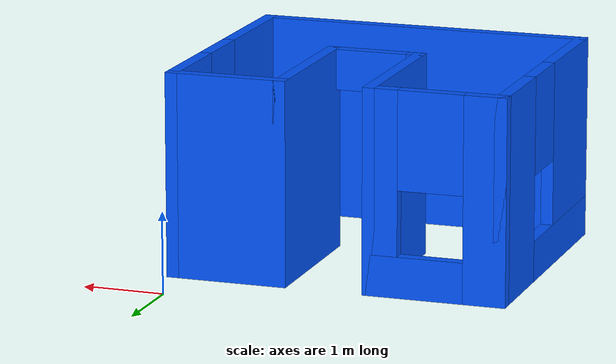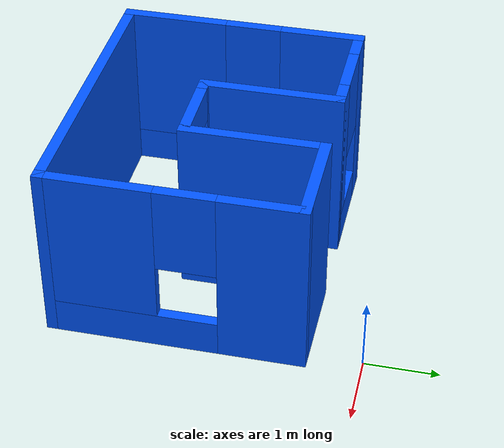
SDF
<?xml version='1.0'?>
<sdf version='1.6'>
  <model name='mybuilding'>
    <pose frame=''>-1.865 -2.465 0 0 -0 0</pose>
    <link name='Wall_0'>
      <pose frame=''>-1.225 1.675 0 0 -0 0</pose>
      <visual name='Wall_0_Visual_0'>
        <pose frame=''>-0.615175 0 1.25 0 -0 0</pose>
        <geometry>
          <box>
            <size>0.51965 0.15 2.5</size>
          </box>
        </geometry>
        <material>
          <script>
            <uri>file://media/materials/scripts/gazebo.material</uri>
            <name>Gazebo/Grey</name>
          </script>
          <ambient>0 0.333333 1 1</ambient>
        </material>
        <meta>
          <layer>0</layer>
        </meta>
      </visual>
      <collision name='Wall_0_Collision_0'>
        <geometry>
          <box>
            <size>0.51965 0.15 2.5</size>
          </box>
        </geometry>
        <pose frame=''>-0.615175 0 1.25 0 -0 0</pose>
      </collision>
      <visual name='Wall_0_Visual_1'>
        <pose frame=''>0.259825 0 0.25 0 -0 0</pose>
        <geometry>
          <box>
            <size>1.23035 0.15 0.5</size>
          </box>
        </geometry>
        <material>
          <script>
            <uri>file://media/materials/scripts/gazebo.material</uri>
            <name>Gazebo/Grey</name>
          </script>
          <ambient>0 0.333333 1 1</ambient>
        </material>
        <meta>
          <layer>0</layer>
        </meta>
      </visual>
      <collision name='Wall_0_Collision_1'>
        <geometry>
          <box>
            <size>1.23035 0.15 0.5</size>
          </box>
        </geometry>
        <pose frame=''>0.259825 0 0.25 0 -0 0</pose>
      </collision>
      <visual name='Wall_0_Visual_2'>
        <pose frame=''>0.659825 0 1.5 0 -0 0</pose>
        <geometry>
          <box>
            <size>0.43035 0.15 2</size>
          </box>
        </geometry>
        <material>
          <script>
            <uri>file://media/materials/scripts/gazebo.material</uri>
            <name>Gazebo/Grey</name>
          </script>
          <ambient>0 0.333333 1 1</ambient>
        </material>
        <meta>
          <layer>0</layer>
        </meta>
      </visual>
      <collision name='Wall_0_Collision_2'>
        <geometry>
          <box>
            <size>0.43035 0.15 2</size>
          </box>
        </geometry>
        <pose frame=''>0.659825 0 1.5 0 -0 0</pose>
      </collision>
      <visual name='Wall_0_Visual_3'>
        <pose frame=''>0.04465 0 1.9 0 -0 0</pose>
        <geometry>
          <box>
            <size>0.8 0.15 1.2</size>
          </box>
        </geometry>
        <material>
          <script>
            <uri>file://media/materials/scripts/gazebo.material</uri>
            <name>Gazebo/Grey</name>
          </script>
          <ambient>0 0.333333 1 1</ambient>
        </material>
        <meta>
          <layer>0</layer>
        </meta>
      </visual>
      <collision name='Wall_0_Collision_3'>
        <geometry>
          <box>
            <size>0.8 0.15 1.2</size>
          </box>
        </geometry>
        <pose frame=''>0.04465 0 1.9 0 -0 0</pose>
      </collision>
    </link>
    <link name='Wall_1'>
      <collision name='Wall_1_Collision'>
        <geometry>
          <box>
            <size>2 0.15 2.5</size>
          </box>
        </geometry>
        <pose frame=''>0 0 1.25 0 -0 0</pose>
      </collision>
      <visual name='Wall_1_Visual'>
        <pose frame=''>0 0 1.25 0 -0 0</pose>
        <geometry>
          <box>
            <size>2 0.15 2.5</size>
          </box>
        </geometry>
        <material>
          <script>
            <uri>file://media/materials/scripts/gazebo.material</uri>
            <name>Gazebo/Grey</name>
          </script>
          <ambient>0 0.333333 1 1</ambient>
        </material>
        <meta>
          <layer>0</layer>
        </meta>
      </visual>
      <pose frame=''>-0.425 0.75 0 0 0 -1.5708</pose>
    </link>
    <link name='Wall_13'>
      <collision name='Wall_13_Collision'>
        <geometry>
          <box>
            <size>1.5 0.15 2.5</size>
          </box>
        </geometry>
        <pose frame=''>0 0 1.25 0 -0 0</pose>
      </collision>
      <visual name='Wall_13_Visual'>
        <pose frame=''>0 0 1.25 0 -0 0</pose>
        <geometry>
          <box>
            <size>1.5 0.15 2.5</size>
          </box>
        </geometry>
        <material>
          <script>
            <uri>file://media/materials/scripts/gazebo.material</uri>
            <name>Gazebo/Grey</name>
          </script>
          <ambient>0 0.333333 1 1</ambient>
        </material>
        <meta>
          <layer>0</layer>
        </meta>
      </visual>
      <pose frame=''>1.35 1.675 0 0 -0 0</pose>
    </link>
    <link name='Wall_17'>
      <pose frame=''>2.025 0 0 0 0 -1.5708</pose>
      <visual name='Wall_17_Visual_0'>
        <pose frame=''>-1.16758 0 1.25 0 -0 0</pose>
        <geometry>
          <box>
            <size>1.16485 0.15 2.5</size>
          </box>
        </geometry>
        <material>
          <script>
            <uri>file://media/materials/scripts/gazebo.material</uri>
            <name>Gazebo/Grey</name>
          </script>
          <ambient>0 0.333333 1 1</ambient>
        </material>
        <meta>
          <layer>0</layer>
        </meta>
      </visual>
      <collision name='Wall_17_Collision_0'>
        <geometry>
          <box>
            <size>1.16485 0.15 2.5</size>
          </box>
        </geometry>
        <pose frame=''>-1.16758 0 1.25 0 -0 0</pose>
      </collision>
      <visual name='Wall_17_Visual_1'>
        <pose frame=''>0.582425 0 0.25 0 -0 0</pose>
        <geometry>
          <box>
            <size>2.33515 0.15 0.5</size>
          </box>
        </geometry>
        <material>
          <script>
            <uri>file://media/materials/scripts/gazebo.material</uri>
            <name>Gazebo/Grey</name>
          </script>
          <ambient>0 0.333333 1 1</ambient>
        </material>
        <meta>
          <layer>0</layer>
        </meta>
      </visual>
      <collision name='Wall_17_Collision_1'>
        <geometry>
          <box>
            <size>2.33515 0.15 0.5</size>
          </box>
        </geometry>
        <pose frame=''>0.582425 0 0.25 0 -0 0</pose>
      </collision>
      <visual name='Wall_17_Visual_2'>
        <pose frame=''>0.982425 0 1.5 0 -0 0</pose>
        <geometry>
          <box>
            <size>1.53515 0.15 2</size>
          </box>
        </geometry>
        <material>
          <script>
            <uri>file://media/materials/scripts/gazebo.material</uri>
            <name>Gazebo/Grey</name>
          </script>
          <ambient>0 0.333333 1 1</ambient>
        </material>
        <meta>
          <layer>0</layer>
        </meta>
      </visual>
      <collision name='Wall_17_Collision_2'>
        <geometry>
          <box>
            <size>1.53515 0.15 2</size>
          </box>
        </geometry>
        <pose frame=''>0.982425 0 1.5 0 -0 0</pose>
      </collision>
      <visual name='Wall_17_Visual_3'>
        <pose frame=''>-0.18515 0 1.9 0 -0 0</pose>
        <geometry>
          <box>
            <size>0.8 0.15 1.2</size>
          </box>
        </geometry>
        <material>
          <script>
            <uri>file://media/materials/scripts/gazebo.material</uri>
            <name>Gazebo/Grey</name>
          </script>
          <ambient>0 0.333333 1 1</ambient>
        </material>
        <meta>
          <layer>0</layer>
        </meta>
      </visual>
      <collision name='Wall_17_Collision_3'>
        <geometry>
          <box>
            <size>0.8 0.15 1.2</size>
          </box>
        </geometry>
        <pose frame=''>-0.18515 0 1.9 0 -0 0</pose>
      </collision>
    </link>
    <link name='Wall_2'>
      <pose frame=''>0.125 -0.175 0 0 -0 0</pose>
      <visual name='Wall_2_Visual_0'>
        <pose frame=''>-0.5157 0 1.25 0 -0 0</pose>
        <geometry>
          <box>
            <size>0.2186 0.15 2.5</size>
          </box>
        </geometry>
        <material>
          <script>
            <uri>file://media/materials/scripts/gazebo.material</uri>
            <name>Gazebo/Grey</name>
          </script>
          <ambient>0 0.333333 1 1</ambient>
        </material>
        <meta>
          <layer>0</layer>
        </meta>
      </visual>
      <collision name='Wall_2_Collision_0'>
        <geometry>
          <box>
            <size>0.2186 0.15 2.5</size>
          </box>
        </geometry>
        <pose frame=''>-0.5157 0 1.25 0 -0 0</pose>
      </collision>
      <visual name='Wall_2_Visual_1'>
        <pose frame=''>0.5593 0 1.25 0 -0 0</pose>
        <geometry>
          <box>
            <size>0.1314 0.15 2.5</size>
          </box>
        </geometry>
        <material>
          <script>
            <uri>file://media/materials/scripts/gazebo.material</uri>
            <name>Gazebo/Grey</name>
          </script>
          <ambient>0 0.333333 1 1</ambient>
        </material>
        <meta>
          <layer>0</layer>
        </meta>
      </visual>
      <collision name='Wall_2_Collision_1'>
        <geometry>
          <box>
            <size>0.1314 0.15 2.5</size>
          </box>
        </geometry>
        <pose frame=''>0.5593 0 1.25 0 -0 0</pose>
      </collision>
      <visual name='Wall_2_Visual_2'>
        <pose frame=''>0.0436 0 2.25 0 -0 0</pose>
        <geometry>
          <box>
            <size>0.9 0.15 0.5</size>
          </box>
        </geometry>
        <material>
          <script>
            <uri>file://media/materials/scripts/gazebo.material</uri>
            <name>Gazebo/Grey</name>
          </script>
          <ambient>0 0.333333 1 1</ambient>
        </material>
        <meta>
          <layer>0</layer>
        </meta>
      </visual>
      <collision name='Wall_2_Collision_2'>
        <geometry>
          <box>
            <size>0.9 0.15 0.5</size>
          </box>
        </geometry>
        <pose frame=''>0.0436 0 2.25 0 -0 0</pose>
      </collision>
    </link>
    <link name='Wall_25'>
      <pose frame=''>-2.025 0 0 0 0 -1.5708</pose>
      <visual name='Wall_25_Visual_0'>
        <pose frame=''>-1.15435 0 1.25 0 -0 0</pose>
        <geometry>
          <box>
            <size>1.1913 0.15 2.5</size>
          </box>
        </geometry>
        <material>
          <script>
            <uri>file://media/materials/scripts/gazebo.material</uri>
            <name>Gazebo/Grey</name>
          </script>
          <ambient>0 0.333333 1 1</ambient>
        </material>
        <meta>
          <layer>0</layer>
        </meta>
      </visual>
      <collision name='Wall_25_Collision_0'>
        <geometry>
          <box>
            <size>1.1913 0.15 2.5</size>
          </box>
        </geometry>
        <pose frame=''>-1.15435 0 1.25 0 -0 0</pose>
      </collision>
      <visual name='Wall_25_Visual_1'>
        <pose frame=''>0.59565 0 0.25 0 -0 0</pose>
        <geometry>
          <box>
            <size>2.3087 0.15 0.5</size>
          </box>
        </geometry>
        <material>
          <script>
            <uri>file://media/materials/scripts/gazebo.material</uri>
            <name>Gazebo/Grey</name>
          </script>
          <ambient>0 0.333333 1 1</ambient>
        </material>
        <meta>
          <layer>0</layer>
        </meta>
      </visual>
      <collision name='Wall_25_Collision_1'>
        <geometry>
          <box>
            <size>2.3087 0.15 0.5</size>
          </box>
        </geometry>
        <pose frame=''>0.59565 0 0.25 0 -0 0</pose>
      </collision>
      <visual name='Wall_25_Visual_2'>
        <pose frame=''>0.99565 0 1.5 0 -0 0</pose>
        <geometry>
          <box>
            <size>1.5087 0.15 2</size>
          </box>
        </geometry>
        <material>
          <script>
            <uri>file://media/materials/scripts/gazebo.material</uri>
            <name>Gazebo/Grey</name>
          </script>
          <ambient>0 0.333333 1 1</ambient>
        </material>
        <meta>
          <layer>0</layer>
        </meta>
      </visual>
      <collision name='Wall_25_Collision_2'>
        <geometry>
          <box>
            <size>1.5087 0.15 2</size>
          </box>
        </geometry>
        <pose frame=''>0.99565 0 1.5 0 -0 0</pose>
      </collision>
      <visual name='Wall_25_Visual_3'>
        <pose frame=''>-0.1587 0 1.9 0 -0 0</pose>
        <geometry>
          <box>
            <size>0.8 0.15 1.2</size>
          </box>
        </geometry>
        <material>
          <script>
            <uri>file://media/materials/scripts/gazebo.material</uri>
            <name>Gazebo/Grey</name>
          </script>
          <ambient>0 0.333333 1 1</ambient>
        </material>
        <meta>
          <layer>0</layer>
        </meta>
      </visual>
      <collision name='Wall_25_Collision_3'>
        <geometry>
          <box>
            <size>0.8 0.15 1.2</size>
          </box>
        </geometry>
        <pose frame=''>-0.1587 0 1.9 0 -0 0</pose>
      </collision>
    </link>
    <link name='Wall_26'>
      <collision name='Wall_26_Collision'>
        <geometry>
          <box>
            <size>4.2 0.15 2.5</size>
          </box>
        </geometry>
        <pose frame=''>0 0 1.25 0 -0 0</pose>
      </collision>
      <visual name='Wall_26_Visual'>
        <pose frame=''>0 0 1.25 0 -0 0</pose>
        <geometry>
          <box>
            <size>4.2 0.15 2.5</size>
          </box>
        </geometry>
        <material>
          <script>
            <uri>file://media/materials/scripts/gazebo.material</uri>
            <name>Gazebo/Grey</name>
          </script>
          <ambient>0 0.333333 1 1</ambient>
        </material>
        <meta>
          <layer>0</layer>
        </meta>
      </visual>
      <pose frame=''>0 -1.675 0 0 -0 0</pose>
    </link>
    <link name='Wall_3'>
      <collision name='Wall_3_Collision'>
        <geometry>
          <box>
            <size>2 0.15 2.5</size>
          </box>
        </geometry>
        <pose frame=''>0 0 1.25 0 -0 0</pose>
      </collision>
      <visual name='Wall_3_Visual'>
        <pose frame=''>0 0 1.25 0 -0 0</pose>
        <geometry>
          <box>
            <size>2 0.15 2.5</size>
          </box>
        </geometry>
        <material>
          <script>
            <uri>file://media/materials/scripts/gazebo.material</uri>
            <name>Gazebo/Grey</name>
          </script>
          <ambient>0 0.333333 1 1</ambient>
        </material>
        <meta>
          <layer>0</layer>
        </meta>
      </visual>
      <pose frame=''>0.675 0.75 0 0 -0 1.5708</pose>
    </link>
    <static>1</static>
  </model>
</sdf>
